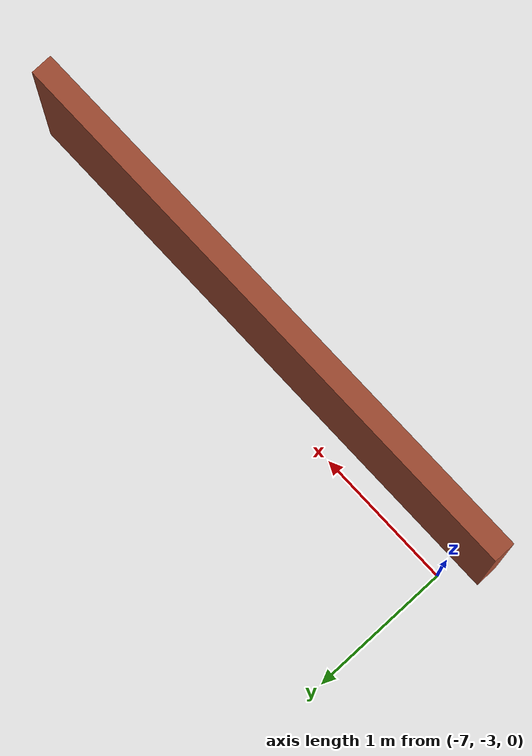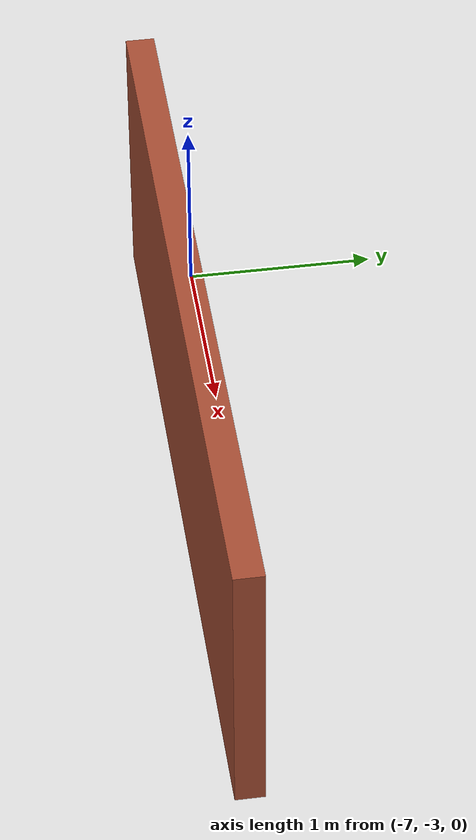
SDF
<?xml version='1.0'?>
<sdf version='1.6'>
  <model name='brick_wall'>
    <pose frame=''>-5.216 -3.221 0 0 -0 0</pose>
    <link name='Wall_3'>
      <collision name='Wall_3_Collision'>
        <geometry>
          <box>
            <size>4 0.15 1.5</size>
          </box>
        </geometry>
        <pose frame=''>0 0 0.75 0 -0 0</pose>
      </collision>
      <visual name='Wall_3_Visual'>
        <pose frame=''>0 0 0.75 0 -0 0</pose>
        <geometry>
          <box>
            <size>4 0.15 1.5</size>
          </box>
        </geometry>
        <material>
          <script>
            <uri>file://media/materials/scripts/gazebo.material</uri>
            <name>Gazebo/Bricks</name>
          </script>
          <ambient>1 1 1 1</ambient>
        </material>
      </visual>
      <pose frame=''>0 0 0 0 -0 0</pose>
    </link>
    <static>1</static>
  </model>
</sdf>
